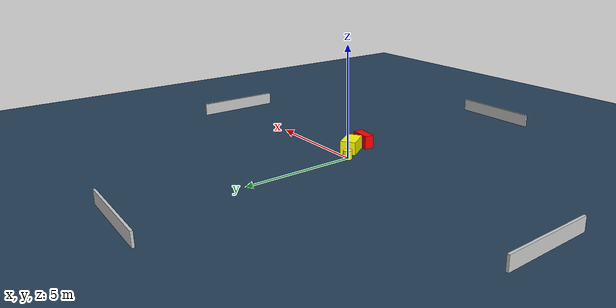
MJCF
<?xml version="1.0" ?>
<mujoco model="generated_environment">
  <option timestep="0.01" integrator="RK4" cone="elliptic"/>
  <default>
    <geom density="1"/>
  </default>
  <asset>
    <texture builtin="gradient" height="3072" name="skybox" rgb1="0.3 0.5 0.7" rgb2="0 0 0" type="skybox" width="512"/>
    <texture builtin="checker" height="300" name="groundplane" rgb1="0.2 0.3 0.4" rgb2="0.1 0.2 0.3" type="2d" width="300"/>
    <material name="groundplane" reflectance="0.2" texrepeat="5 5" texture="groundplane"/>
  </asset>
  <worldbody>
    <light dir="0 0 -1" directional="true" pos="0 0 1.5"/>
    <geom condim="3" friction="0.5 0.005 0.001" material="groundplane" name="floor" pos="0 0 0" size="0 0 0.05" type="plane"/>
    <body name="walls">
      <geom name="wall_1" condim="4" pos="-10.0 0.0 0.3" rgba="0.800000011920929 0.800000011920929 0.800000011920929 1.0" size="0.05 2.0 0.3" type="box"/>
      <geom name="wall_2" condim="4" pos="10.0 0.0 0.3" rgba="0.800000011920929 0.800000011920929 0.800000011920929 1.0" size="0.05 2.0 0.3" type="box"/>
      <geom name="wall_3" condim="4" pos="0.0 -10.0 0.3" rgba="0.800000011920929 0.800000011920929 0.800000011920929 1.0" size="2.0 0.05 0.3" type="box"/>
      <geom name="wall_4" condim="4" pos="0.0 10.0 0.3" rgba="0.800000011920929 0.800000011920929 0.800000011920929 1.0" size="2.0 0.05 0.3" type="box"/>
    </body>
    <body name="robot">
      <joint name="joint_x" type="slide" pos="0 0 0" axis="1 0 0"/>
      <joint name="joint_y" type="slide" pos="0 0 0" axis="0 1 0"/>
      <geom name="robot" type="cylinder" pos="0.0 0.0 0.2" size="0.2 0.2 0.0" mass="5.0" friction="1.0 0.005 0.0001" condim="4" rgba="1.0 1.0 0.0 1.0"/>
    </body>
    <body name="obstacle_1_movable">
      <geom name="obstacle_1_movable" condim="4" pos="0.6816061832842147 -0.7446714795438325 0.3" euler="0 0 304.2413447301134" friction="0.0 0.005 0.001" rgba="1.0 1.0 0.0 1.0" size="0.5374938639560938 0.34986868729152243 0.3" type="box" mass="0.1"/>
      <joint type="free"/>
    </body>
    <body name="obstacle_2_static">
      <geom name="obstacle_2_static" condim="4" pos="0.8958535411393687 -1.6386182161990608 0.3" euler="0 0 173.08923248834463" friction="0.0 0.005 0.001" rgba="1.0 0.0 0.0 1.0" size="0.48687501169345093 0.21565427137324006 0.3" type="box"/>
    </body>
  </worldbody>
  <actuator>
    <motor name="actuator_x" joint="joint_x" gear="1" ctrlrange="-1 1"/>
    <motor name="actuator_y" joint="joint_y" gear="1" ctrlrange="-1 1"/>
  </actuator>
</mujoco>
